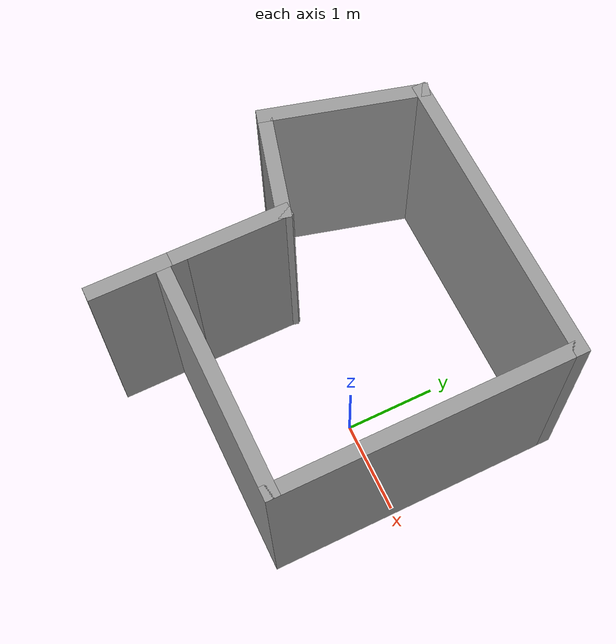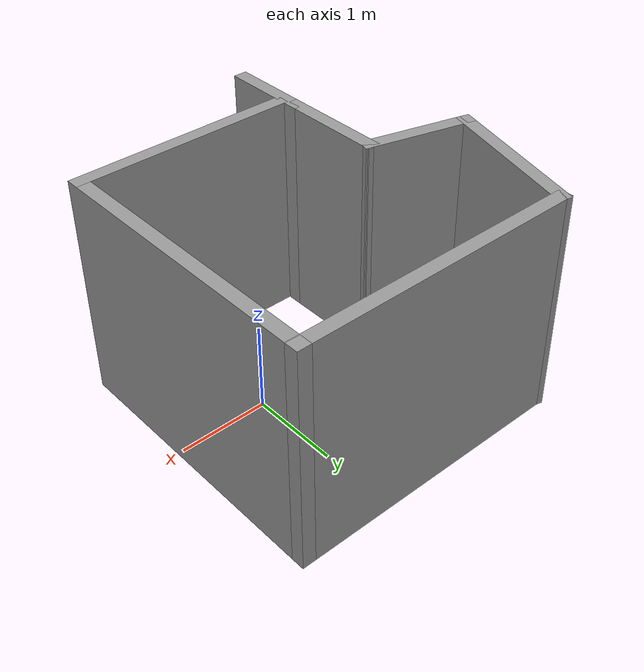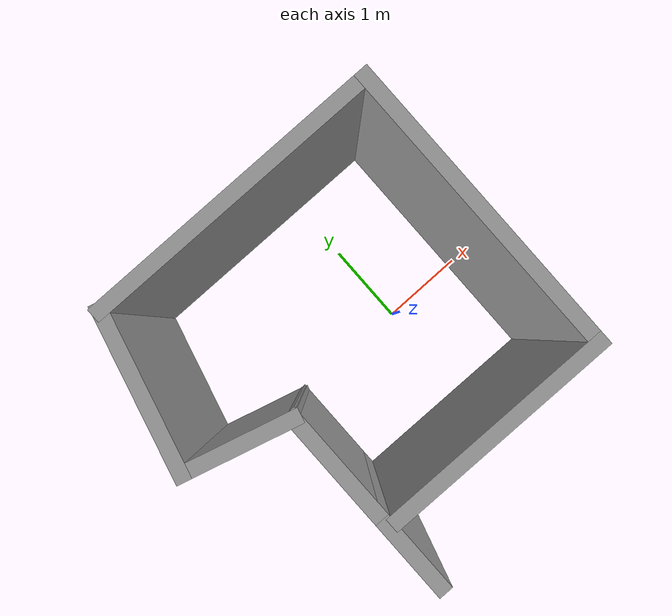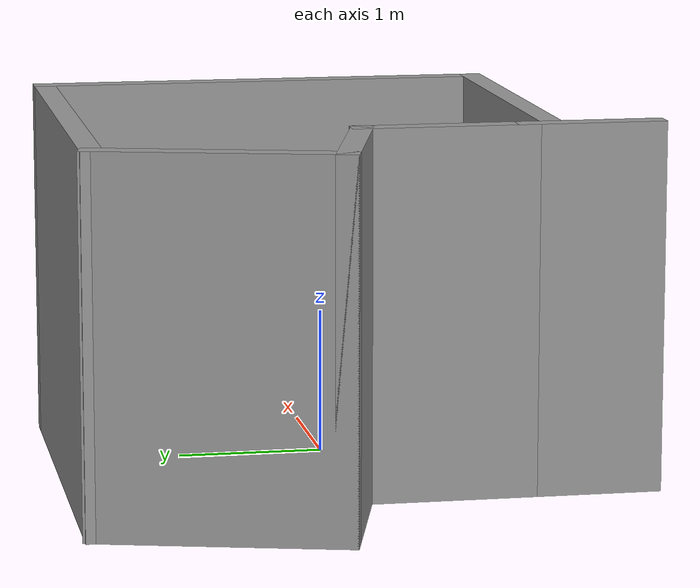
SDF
<?xml version='1.0'?>
<sdf version='1.7'>
  <model name='my_env'>
    <pose>-0.775483 -0.071663 0 0 -0 0</pose>
    <link name='Wall_1'>
      <collision name='Wall_1_Collision'>
        <geometry>
          <box>
            <size>2.5 0.15 2.5</size>
          </box>
        </geometry>
        <pose>0 0 1.25 0 -0 0</pose>
      </collision>
      <visual name='Wall_1_Visual'>
        <pose>0 0 1.25 0 -0 0</pose>
        <geometry>
          <box>
            <size>2.5 0.15 2.5</size>
          </box>
        </geometry>
        <material>
          <script>
            <uri>file://media/materials/scripts/gazebo.material</uri>
            <name>Gazebo/Grey</name>
          </script>
          <ambient>1 1 1 1</ambient>
        </material>
        <meta>
          <layer>0</layer>
        </meta>
      </visual>
      <pose>0.590483 -1.21834 0 0 -0 0</pose>
    </link>
    <link name='Wall_2'>
      <collision name='Wall_2_Collision'>
        <geometry>
          <box>
            <size>3.25 0.15 2.5</size>
          </box>
        </geometry>
        <pose>0 0 1.25 0 -0 0</pose>
      </collision>
      <visual name='Wall_2_Visual'>
        <pose>0 0 1.25 0 -0 0</pose>
        <geometry>
          <box>
            <size>3.25 0.15 2.5</size>
          </box>
        </geometry>
        <material>
          <script>
            <uri>file://media/materials/scripts/gazebo.material</uri>
            <name>Gazebo/Grey</name>
          </script>
          <ambient>1 1 1 1</ambient>
        </material>
        <meta>
          <layer>0</layer>
        </meta>
      </visual>
      <pose>1.76548 0.331663 0 0 -0 1.5708</pose>
    </link>
    <link name='Wall_3'>
      <collision name='Wall_3_Collision'>
        <geometry>
          <box>
            <size>3.25 0.15 2.5</size>
          </box>
        </geometry>
        <pose>0 0 1.25 0 -0 0</pose>
      </collision>
      <visual name='Wall_3_Visual'>
        <pose>0 0 1.25 0 -0 0</pose>
        <geometry>
          <box>
            <size>3.25 0.15 2.5</size>
          </box>
        </geometry>
        <material>
          <script>
            <uri>file://media/materials/scripts/gazebo.material</uri>
            <name>Gazebo/Grey</name>
          </script>
          <ambient>1 1 1 1</ambient>
        </material>
        <meta>
          <layer>0</layer>
        </meta>
      </visual>
      <pose>0.215483 1.88166 0 0 -0 3.14159</pose>
    </link>
    <link name='Wall_4'>
      <collision name='Wall_4_Collision'>
        <geometry>
          <box>
            <size>1.75 0.15 2.5</size>
          </box>
        </geometry>
        <pose>0 0 1.25 0 -0 0</pose>
      </collision>
      <visual name='Wall_4_Visual'>
        <pose>0 0 1.25 0 -0 0</pose>
        <geometry>
          <box>
            <size>1.75 0.15 2.5</size>
          </box>
        </geometry>
        <material>
          <script>
            <uri>file://media/materials/scripts/gazebo.material</uri>
            <name>Gazebo/Grey</name>
          </script>
          <ambient>1 1 1 1</ambient>
        </material>
        <meta>
          <layer>0</layer>
        </meta>
      </visual>
      <pose>-1.54157 1.10892 0 0 -0 -1.8326</pose>
    </link>
    <link name='Wall_5'>
      <collision name='Wall_5_Collision'>
        <geometry>
          <box>
            <size>1.25 0.15 2.5</size>
          </box>
        </geometry>
        <pose>0 0 1.25 0 -0 0</pose>
      </collision>
      <visual name='Wall_5_Visual'>
        <pose>0 0 1.25 0 -0 0</pose>
        <geometry>
          <box>
            <size>1.25 0.15 2.5</size>
          </box>
        </geometry>
        <material>
          <script>
            <uri>file://media/materials/scripts/gazebo.material</uri>
            <name>Gazebo/Grey</name>
          </script>
          <ambient>1 1 1 1</ambient>
        </material>
        <meta>
          <layer>0</layer>
        </meta>
      </visual>
      <pose>-1.21737 0.193831 0 0 -0 -0.261799</pose>
    </link>
    <link name='Wall_6'>
      <collision name='Wall_6_Collision'>
        <geometry>
          <box>
            <size>1.25 0.15 2.5</size>
          </box>
        </geometry>
        <pose>0 0 1.25 0 -0 0</pose>
      </collision>
      <visual name='Wall_6_Visual'>
        <pose>0 0 1.25 0 -0 0</pose>
        <geometry>
          <box>
            <size>1.25 0.15 2.5</size>
          </box>
        </geometry>
        <material>
          <script>
            <uri>file://media/materials/scripts/gazebo.material</uri>
            <name>Gazebo/Grey</name>
          </script>
          <ambient>1 1 1 1</ambient>
        </material>
        <meta>
          <layer>0</layer>
        </meta>
      </visual>
      <pose>-0.686109 -0.498519 0 0 -0 -1.5708</pose>
    </link>
    <link name='Wall_7'>
      <collision name='Wall_7_Collision'>
        <geometry>
          <box>
            <size>1 0.15 2.5</size>
          </box>
        </geometry>
        <pose>0 0 1.25 0 -0 0</pose>
      </collision>
      <visual name='Wall_7_Visual'>
        <pose>0 0 1.25 0 -0 0</pose>
        <geometry>
          <box>
            <size>1 0.15 2.5</size>
          </box>
        </geometry>
        <material>
          <script>
            <uri>file://media/materials/scripts/gazebo.material</uri>
            <name>Gazebo/Grey</name>
          </script>
          <ambient>1 1 1 1</ambient>
        </material>
        <meta>
          <layer>0</layer>
        </meta>
      </visual>
      <pose>-0.686109 -1.47352 0 0 -0 -1.5708</pose>
    </link>
    <static>1</static>
  </model>
</sdf>
